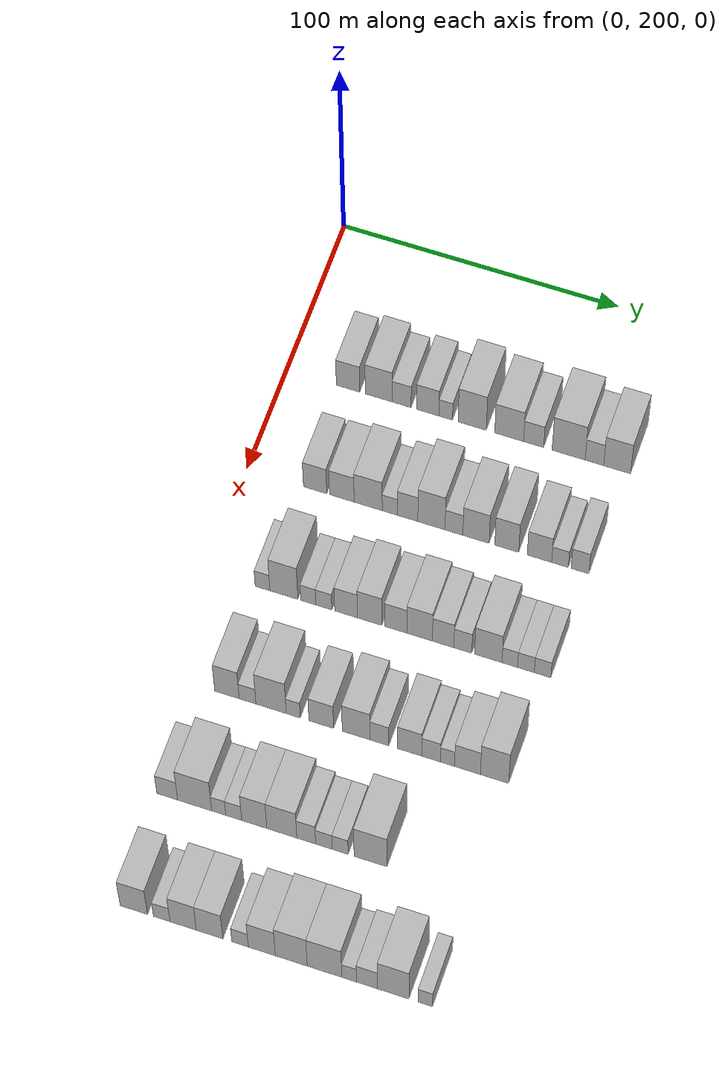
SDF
<sdf version="1.6">
 <world name="default">
  <model name="building_95">
   <static>1</static>
   <pose>50.0000 222.2720 0 0.000000 0.000000 0.000000</pose>
   <link name="link">
    <pose>0 0 9.00 0 0 0</pose>
    <collision name="collision"><geometry><box><size>20.0000 8.4566 18.0000</size></box></geometry></collision>
    <visual name="visual">
     <cast_shadows>0</cast_shadows>
     <geometry><box><size>20.0000 8.4566 18.0000</size></box></geometry>
     <material>
      <script>
       <uri>model://HANNAS_wall/materials/scripts</uri>
       <uri>model://HANNAS_wall/materials/textures</uri>
       <name>vrc/HANNAS_wall</name>
      </script>
     </material>
    </visual>
   </link>
  </model>
  <model name="building_96">
   <static>1</static>
   <pose>50.0000 233.3106 0 0.000000 0.000000 0.000000</pose>
   <link name="link">
    <pose>0 0 10.50 0 0 0</pose>
    <collision name="collision"><geometry><box><size>20.0000 9.6207 21.0000</size></box></geometry></collision>
    <visual name="visual">
     <cast_shadows>0</cast_shadows>
     <geometry><box><size>20.0000 9.6207 21.0000</size></box></geometry>
     <material>
      <script>
       <uri>model://HANNAS_wall/materials/scripts</uri>
       <uri>model://HANNAS_wall/materials/textures</uri>
       <name>vrc/HANNAS_wall</name>
      </script>
     </material>
    </visual>
   </link>
  </model>
  <model name="building_97">
   <static>1</static>
   <pose>50.0000 241.5277 0 0.000000 0.000000 0.000000</pose>
   <link name="link">
    <pose>0 0 7.50 0 0 0</pose>
    <collision name="collision"><geometry><box><size>20.0000 6.8134 15.0000</size></box></geometry></collision>
    <visual name="visual">
     <cast_shadows>0</cast_shadows>
     <geometry><box><size>20.0000 6.8134 15.0000</size></box></geometry>
     <material>
      <script>
       <uri>model://HANNAS_wall/materials/scripts</uri>
       <uri>model://HANNAS_wall/materials/textures</uri>
       <name>vrc/HANNAS_wall</name>
      </script>
     </material>
    </visual>
   </link>
  </model>
  <model name="building_98">
   <static>1</static>
   <pose>50.0000 250.9354 0 0.000000 0.000000 0.000000</pose>
   <link name="link">
    <pose>0 0 9.00 0 0 0</pose>
    <collision name="collision"><geometry><box><size>20.0000 8.0019 18.0000</size></box></geometry></collision>
    <visual name="visual">
     <cast_shadows>0</cast_shadows>
     <geometry><box><size>20.0000 8.0019 18.0000</size></box></geometry>
     <material>
      <script>
       <uri>model://HANNAS_wall/materials/scripts</uri>
       <uri>model://HANNAS_wall/materials/textures</uri>
       <name>vrc/HANNAS_wall</name>
      </script>
     </material>
    </visual>
   </link>
  </model>
  <model name="building_99">
   <static>1</static>
   <pose>50.0000 257.3571 0 0.000000 0.000000 0.000000</pose>
   <link name="link">
    <pose>0 0 6.00 0 0 0</pose>
    <collision name="collision"><geometry><box><size>20.0000 4.8415 12.0000</size></box></geometry></collision>
    <visual name="visual">
     <cast_shadows>0</cast_shadows>
     <geometry><box><size>20.0000 4.8415 12.0000</size></box></geometry>
     <material>
      <script>
       <uri>model://HANNAS_wall/materials/scripts</uri>
       <uri>model://HANNAS_wall/materials/textures</uri>
       <name>vrc/HANNAS_wall</name>
      </script>
     </material>
    </visual>
   </link>
  </model>
  <model name="building_100">
   <static>1</static>
   <pose>50.0000 266.8062 0 0.000000 0.000000 0.000000</pose>
   <link name="link">
    <pose>0 0 12.00 0 0 0</pose>
    <collision name="collision"><geometry><box><size>20.0000 10.0568 24.0000</size></box></geometry></collision>
    <visual name="visual">
     <cast_shadows>0</cast_shadows>
     <geometry><box><size>20.0000 10.0568 24.0000</size></box></geometry>
     <material>
      <script>
       <uri>model://HANNAS_wall/materials/scripts</uri>
       <uri>model://HANNAS_wall/materials/textures</uri>
       <name>vrc/HANNAS_wall</name>
      </script>
     </material>
    </visual>
   </link>
  </model>
  <model name="building_101">
   <static>1</static>
   <pose>50.0000 279.9555 0 0.000000 0.000000 0.000000</pose>
   <link name="link">
    <pose>0 0 10.50 0 0 0</pose>
    <collision name="collision"><geometry><box><size>20.0000 10.2418 21.0000</size></box></geometry></collision>
    <visual name="visual">
     <cast_shadows>0</cast_shadows>
     <geometry><box><size>20.0000 10.2418 21.0000</size></box></geometry>
     <material>
      <script>
       <uri>model://HANNAS_wall/materials/scripts</uri>
       <uri>model://HANNAS_wall/materials/textures</uri>
       <name>vrc/HANNAS_wall</name>
      </script>
     </material>
    </visual>
   </link>
  </model>
  <model name="building_102">
   <static>1</static>
   <pose>50.0000 288.6514 0 0.000000 0.000000 0.000000</pose>
   <link name="link">
    <pose>0 0 7.50 0 0 0</pose>
    <collision name="collision"><geometry><box><size>20.0000 7.1499 15.0000</size></box></geometry></collision>
    <visual name="visual">
     <cast_shadows>0</cast_shadows>
     <geometry><box><size>20.0000 7.1499 15.0000</size></box></geometry>
     <material>
      <script>
       <uri>model://HANNAS_wall/materials/scripts</uri>
       <uri>model://HANNAS_wall/materials/textures</uri>
       <name>vrc/HANNAS_wall</name>
      </script>
     </material>
    </visual>
   </link>
  </model>
  <model name="building_103">
   <static>1</static>
   <pose>50.0000 301.0741 0 0.000000 0.000000 0.000000</pose>
   <link name="link">
    <pose>0 0 12.00 0 0 0</pose>
    <collision name="collision"><geometry><box><size>20.0000 11.6955 24.0000</size></box></geometry></collision>
    <visual name="visual">
     <cast_shadows>0</cast_shadows>
     <geometry><box><size>20.0000 11.6955 24.0000</size></box></geometry>
     <material>
      <script>
       <uri>model://HANNAS_wall/materials/scripts</uri>
       <uri>model://HANNAS_wall/materials/textures</uri>
       <name>vrc/HANNAS_wall</name>
      </script>
     </material>
    </visual>
   </link>
  </model>
  <model name="building_104">
   <static>1</static>
   <pose>50.0000 310.1963 0 0.000000 0.000000 0.000000</pose>
   <link name="link">
    <pose>0 0 7.50 0 0 0</pose>
    <collision name="collision"><geometry><box><size>20.0000 6.5489 15.0000</size></box></geometry></collision>
    <visual name="visual">
     <cast_shadows>0</cast_shadows>
     <geometry><box><size>20.0000 6.5489 15.0000</size></box></geometry>
     <material>
      <script>
       <uri>model://HANNAS_wall/materials/scripts</uri>
       <uri>model://HANNAS_wall/materials/textures</uri>
       <name>vrc/HANNAS_wall</name>
      </script>
     </material>
    </visual>
   </link>
  </model>
  <model name="building_105">
   <static>1</static>
   <pose>50.0000 318.2309 0 0.000000 0.000000 0.000000</pose>
   <link name="link">
    <pose>0 0 10.50 0 0 0</pose>
    <collision name="collision"><geometry><box><size>20.0000 9.5203 21.0000</size></box></geometry></collision>
    <visual name="visual">
     <cast_shadows>0</cast_shadows>
     <geometry><box><size>20.0000 9.5203 21.0000</size></box></geometry>
     <material>
      <script>
       <uri>model://HANNAS_wall/materials/scripts</uri>
       <uri>model://HANNAS_wall/materials/textures</uri>
       <name>vrc/HANNAS_wall</name>
      </script>
     </material>
    </visual>
   </link>
  </model>
  <model name="building_232">
   <static>1</static>
   <pose>90.0000 224.4214 0 0.000000 0.000000 0.000000</pose>
   <link name="link">
    <pose>0 0 9.00 0 0 0</pose>
    <collision name="collision"><geometry><box><size>20.0000 8.2907 18.0000</size></box></geometry></collision>
    <visual name="visual">
     <cast_shadows>0</cast_shadows>
     <geometry><box><size>20.0000 8.2907 18.0000</size></box></geometry>
     <material>
      <script>
       <uri>model://HANNAS_wall/materials/scripts</uri>
       <uri>model://HANNAS_wall/materials/textures</uri>
       <name>vrc/HANNAS_wall</name>
      </script>
     </material>
    </visual>
   </link>
  </model>
  <model name="building_233">
   <static>1</static>
   <pose>90.0000 233.9444 0 0.000000 0.000000 0.000000</pose>
   <link name="link">
    <pose>0 0 9.00 0 0 0</pose>
    <collision name="collision"><geometry><box><size>20.0000 8.7552 18.0000</size></box></geometry></collision>
    <visual name="visual">
     <cast_shadows>0</cast_shadows>
     <geometry><box><size>20.0000 8.7552 18.0000</size></box></geometry>
     <material>
      <script>
       <uri>model://HANNAS_wall/materials/scripts</uri>
       <uri>model://HANNAS_wall/materials/textures</uri>
       <name>vrc/HANNAS_wall</name>
      </script>
     </material>
    </visual>
   </link>
  </model>
  <model name="building_234">
   <static>1</static>
   <pose>90.0000 243.2996 0 0.000000 0.000000 0.000000</pose>
   <link name="link">
    <pose>0 0 10.50 0 0 0</pose>
    <collision name="collision"><geometry><box><size>20.0000 9.9551 21.0000</size></box></geometry></collision>
    <visual name="visual">
     <cast_shadows>0</cast_shadows>
     <geometry><box><size>20.0000 9.9551 21.0000</size></box></geometry>
     <material>
      <script>
       <uri>model://HANNAS_wall/materials/scripts</uri>
       <uri>model://HANNAS_wall/materials/textures</uri>
       <name>vrc/HANNAS_wall</name>
      </script>
     </material>
    </visual>
   </link>
  </model>
  <model name="building_235">
   <static>1</static>
   <pose>90.0000 250.9533 0 0.000000 0.000000 0.000000</pose>
   <link name="link">
    <pose>0 0 6.00 0 0 0</pose>
    <collision name="collision"><geometry><box><size>20.0000 5.3523 12.0000</size></box></geometry></collision>
    <visual name="visual">
     <cast_shadows>0</cast_shadows>
     <geometry><box><size>20.0000 5.3523 12.0000</size></box></geometry>
     <material>
      <script>
       <uri>model://HANNAS_wall/materials/scripts</uri>
       <uri>model://HANNAS_wall/materials/textures</uri>
       <name>vrc/HANNAS_wall</name>
      </script>
     </material>
    </visual>
   </link>
  </model>
  <model name="building_236">
   <static>1</static>
   <pose>90.0000 257.2441 0 0.000000 0.000000 0.000000</pose>
   <link name="link">
    <pose>0 0 9.00 0 0 0</pose>
    <collision name="collision"><geometry><box><size>20.0000 7.2294 18.0000</size></box></geometry></collision>
    <visual name="visual">
     <cast_shadows>0</cast_shadows>
     <geometry><box><size>20.0000 7.2294 18.0000</size></box></geometry>
     <material>
      <script>
       <uri>model://HANNAS_wall/materials/scripts</uri>
       <uri>model://HANNAS_wall/materials/textures</uri>
       <name>vrc/HANNAS_wall</name>
      </script>
     </material>
    </visual>
   </link>
  </model>
  <model name="building_237">
   <static>1</static>
   <pose>90.0000 265.6787 0 0.000000 0.000000 0.000000</pose>
   <link name="link">
    <pose>0 0 12.00 0 0 0</pose>
    <collision name="collision"><geometry><box><size>20.0000 9.6397 24.0000</size></box></geometry></collision>
    <visual name="visual">
     <cast_shadows>0</cast_shadows>
     <geometry><box><size>20.0000 9.6397 24.0000</size></box></geometry>
     <material>
      <script>
       <uri>model://HANNAS_wall/materials/scripts</uri>
       <uri>model://HANNAS_wall/materials/textures</uri>
       <name>vrc/HANNAS_wall</name>
      </script>
     </material>
    </visual>
   </link>
  </model>
  <model name="building_238">
   <static>1</static>
   <pose>90.0000 273.6369 0 0.000000 0.000000 0.000000</pose>
   <link name="link">
    <pose>0 0 7.50 0 0 0</pose>
    <collision name="collision"><geometry><box><size>20.0000 6.2767 15.0000</size></box></geometry></collision>
    <visual name="visual">
     <cast_shadows>0</cast_shadows>
     <geometry><box><size>20.0000 6.2767 15.0000</size></box></geometry>
     <material>
      <script>
       <uri>model://HANNAS_wall/materials/scripts</uri>
       <uri>model://HANNAS_wall/materials/textures</uri>
       <name>vrc/HANNAS_wall</name>
      </script>
     </material>
    </visual>
   </link>
  </model>
  <model name="building_239">
   <static>1</static>
   <pose>90.0000 281.3880 0 0.000000 0.000000 0.000000</pose>
   <link name="link">
    <pose>0 0 10.50 0 0 0</pose>
    <collision name="collision"><geometry><box><size>20.0000 9.2254 21.0000</size></box></geometry></collision>
    <visual name="visual">
     <cast_shadows>0</cast_shadows>
     <geometry><box><size>20.0000 9.2254 21.0000</size></box></geometry>
     <material>
      <script>
       <uri>model://HANNAS_wall/materials/scripts</uri>
       <uri>model://HANNAS_wall/materials/textures</uri>
       <name>vrc/HANNAS_wall</name>
      </script>
     </material>
    </visual>
   </link>
  </model>
  <model name="building_240">
   <static>1</static>
   <pose>90.0000 292.2051 0 0.000000 0.000000 0.000000</pose>
   <link name="link">
    <pose>0 0 10.50 0 0 0</pose>
    <collision name="collision"><geometry><box><size>20.0000 8.4088 21.0000</size></box></geometry></collision>
    <visual name="visual">
     <cast_shadows>0</cast_shadows>
     <geometry><box><size>20.0000 8.4088 21.0000</size></box></geometry>
     <material>
      <script>
       <uri>model://HANNAS_wall/materials/scripts</uri>
       <uri>model://HANNAS_wall/materials/textures</uri>
       <name>vrc/HANNAS_wall</name>
      </script>
     </material>
    </visual>
   </link>
  </model>
  <model name="building_241">
   <static>1</static>
   <pose>90.0000 303.6749 0 0.000000 0.000000 0.000000</pose>
   <link name="link">
    <pose>0 0 9.00 0 0 0</pose>
    <collision name="collision"><geometry><box><size>20.0000 8.5307 18.0000</size></box></geometry></collision>
    <visual name="visual">
     <cast_shadows>0</cast_shadows>
     <geometry><box><size>20.0000 8.5307 18.0000</size></box></geometry>
     <material>
      <script>
       <uri>model://HANNAS_wall/materials/scripts</uri>
       <uri>model://HANNAS_wall/materials/textures</uri>
       <name>vrc/HANNAS_wall</name>
      </script>
     </material>
    </visual>
   </link>
  </model>
  <model name="building_242">
   <static>1</static>
   <pose>90.0000 310.8512 0 0.000000 0.000000 0.000000</pose>
   <link name="link">
    <pose>0 0 6.00 0 0 0</pose>
    <collision name="collision"><geometry><box><size>20.0000 5.8221 12.0000</size></box></geometry></collision>
    <visual name="visual">
     <cast_shadows>0</cast_shadows>
     <geometry><box><size>20.0000 5.8221 12.0000</size></box></geometry>
     <material>
      <script>
       <uri>model://HANNAS_wall/materials/scripts</uri>
       <uri>model://HANNAS_wall/materials/textures</uri>
       <name>vrc/HANNAS_wall</name>
      </script>
     </material>
    </visual>
   </link>
  </model>
  <model name="building_243">
   <static>1</static>
   <pose>90.0000 317.8593 0 0.000000 0.000000 0.000000</pose>
   <link name="link">
    <pose>0 0 7.50 0 0 0</pose>
    <collision name="collision"><geometry><box><size>20.0000 6.1939 15.0000</size></box></geometry></collision>
    <visual name="visual">
     <cast_shadows>0</cast_shadows>
     <geometry><box><size>20.0000 6.1939 15.0000</size></box></geometry>
     <material>
      <script>
       <uri>model://HANNAS_wall/materials/scripts</uri>
       <uri>model://HANNAS_wall/materials/textures</uri>
       <name>vrc/HANNAS_wall</name>
      </script>
     </material>
    </visual>
   </link>
  </model>
  <model name="building_375">
   <static>1</static>
   <pose>130.0000 219.9479 0 0.000000 0.000000 0.000000</pose>
   <link name="link">
    <pose>0 0 6.00 0 0 0</pose>
    <collision name="collision"><geometry><box><size>20.0000 5.1856 12.0000</size></box></geometry></collision>
    <visual name="visual">
     <cast_shadows>0</cast_shadows>
     <geometry><box><size>20.0000 5.1856 12.0000</size></box></geometry>
     <material>
      <script>
       <uri>model://HANNAS_wall/materials/scripts</uri>
       <uri>model://HANNAS_wall/materials/textures</uri>
       <name>vrc/HANNAS_wall</name>
      </script>
     </material>
    </visual>
   </link>
  </model>
  <model name="building_376">
   <static>1</static>
   <pose>130.0000 227.4805 0 0.000000 0.000000 0.000000</pose>
   <link name="link">
    <pose>0 0 12.00 0 0 0</pose>
    <collision name="collision"><geometry><box><size>20.0000 9.8796 24.0000</size></box></geometry></collision>
    <visual name="visual">
     <cast_shadows>0</cast_shadows>
     <geometry><box><size>20.0000 9.8796 24.0000</size></box></geometry>
     <material>
      <script>
       <uri>model://HANNAS_wall/materials/scripts</uri>
       <uri>model://HANNAS_wall/materials/textures</uri>
       <name>vrc/HANNAS_wall</name>
      </script>
     </material>
    </visual>
   </link>
  </model>
  <model name="building_377">
   <static>1</static>
   <pose>130.0000 236.0617 0 0.000000 0.000000 0.000000</pose>
   <link name="link">
    <pose>0 0 6.00 0 0 0</pose>
    <collision name="collision"><geometry><box><size>20.0000 5.2829 12.0000</size></box></geometry></collision>
    <visual name="visual">
     <cast_shadows>0</cast_shadows>
     <geometry><box><size>20.0000 5.2829 12.0000</size></box></geometry>
     <material>
      <script>
       <uri>model://HANNAS_wall/materials/scripts</uri>
       <uri>model://HANNAS_wall/materials/textures</uri>
       <name>vrc/HANNAS_wall</name>
      </script>
     </material>
    </visual>
   </link>
  </model>
  <model name="building_378">
   <static>1</static>
   <pose>130.0000 241.5209 0 0.000000 0.000000 0.000000</pose>
   <link name="link">
    <pose>0 0 6.00 0 0 0</pose>
    <collision name="collision"><geometry><box><size>20.0000 5.6355 12.0000</size></box></geometry></collision>
    <visual name="visual">
     <cast_shadows>0</cast_shadows>
     <geometry><box><size>20.0000 5.6355 12.0000</size></box></geometry>
     <material>
      <script>
       <uri>model://HANNAS_wall/materials/scripts</uri>
       <uri>model://HANNAS_wall/materials/textures</uri>
       <name>vrc/HANNAS_wall</name>
      </script>
     </material>
    </visual>
   </link>
  </model>
  <model name="building_379">
   <static>1</static>
   <pose>130.0000 249.3337 0 0.000000 0.000000 0.000000</pose>
   <link name="link">
    <pose>0 0 9.00 0 0 0</pose>
    <collision name="collision"><geometry><box><size>20.0000 7.9901 18.0000</size></box></geometry></collision>
    <visual name="visual">
     <cast_shadows>0</cast_shadows>
     <geometry><box><size>20.0000 7.9901 18.0000</size></box></geometry>
     <material>
      <script>
       <uri>model://HANNAS_wall/materials/scripts</uri>
       <uri>model://HANNAS_wall/materials/textures</uri>
       <name>vrc/HANNAS_wall</name>
      </script>
     </material>
    </visual>
   </link>
  </model>
  <model name="building_380">
   <static>1</static>
   <pose>130.0000 257.5986 0 0.000000 0.000000 0.000000</pose>
   <link name="link">
    <pose>0 0 10.50 0 0 0</pose>
    <collision name="collision"><geometry><box><size>20.0000 8.5398 21.0000</size></box></geometry></collision>
    <visual name="visual">
     <cast_shadows>0</cast_shadows>
     <geometry><box><size>20.0000 8.5398 21.0000</size></box></geometry>
     <material>
      <script>
       <uri>model://HANNAS_wall/materials/scripts</uri>
       <uri>model://HANNAS_wall/materials/textures</uri>
       <name>vrc/HANNAS_wall</name>
      </script>
     </material>
    </visual>
   </link>
  </model>
  <model name="building_381">
   <static>1</static>
   <pose>130.0000 266.7073 0 0.000000 0.000000 0.000000</pose>
   <link name="link">
    <pose>0 0 9.00 0 0 0</pose>
    <collision name="collision"><geometry><box><size>20.0000 7.6778 18.0000</size></box></geometry></collision>
    <visual name="visual">
     <cast_shadows>0</cast_shadows>
     <geometry><box><size>20.0000 7.6778 18.0000</size></box></geometry>
     <material>
      <script>
       <uri>model://HANNAS_wall/materials/scripts</uri>
       <uri>model://HANNAS_wall/materials/textures</uri>
       <name>vrc/HANNAS_wall</name>
      </script>
     </material>
    </visual>
   </link>
  </model>
  <model name="building_382">
   <static>1</static>
   <pose>130.0000 275.0326 0 0.000000 0.000000 0.000000</pose>
   <link name="link">
    <pose>0 0 10.50 0 0 0</pose>
    <collision name="collision"><geometry><box><size>20.0000 8.9727 21.0000</size></box></geometry></collision>
    <visual name="visual">
     <cast_shadows>0</cast_shadows>
     <geometry><box><size>20.0000 8.9727 21.0000</size></box></geometry>
     <material>
      <script>
       <uri>model://HANNAS_wall/materials/scripts</uri>
       <uri>model://HANNAS_wall/materials/textures</uri>
       <name>vrc/HANNAS_wall</name>
      </script>
     </material>
    </visual>
   </link>
  </model>
  <model name="building_383">
   <static>1</static>
   <pose>130.0000 283.2455 0 0.000000 0.000000 0.000000</pose>
   <link name="link">
    <pose>0 0 9.00 0 0 0</pose>
    <collision name="collision"><geometry><box><size>20.0000 7.4532 18.0000</size></box></geometry></collision>
    <visual name="visual">
     <cast_shadows>0</cast_shadows>
     <geometry><box><size>20.0000 7.4532 18.0000</size></box></geometry>
     <material>
      <script>
       <uri>model://HANNAS_wall/materials/scripts</uri>
       <uri>model://HANNAS_wall/materials/textures</uri>
       <name>vrc/HANNAS_wall</name>
      </script>
     </material>
    </visual>
   </link>
  </model>
  <model name="building_384">
   <static>1</static>
   <pose>130.0000 290.0762 0 0.000000 0.000000 0.000000</pose>
   <link name="link">
    <pose>0 0 7.50 0 0 0</pose>
    <collision name="collision"><geometry><box><size>20.0000 6.2083 15.0000</size></box></geometry></collision>
    <visual name="visual">
     <cast_shadows>0</cast_shadows>
     <geometry><box><size>20.0000 6.2083 15.0000</size></box></geometry>
     <material>
      <script>
       <uri>model://HANNAS_wall/materials/scripts</uri>
       <uri>model://HANNAS_wall/materials/textures</uri>
       <name>vrc/HANNAS_wall</name>
      </script>
     </material>
    </visual>
   </link>
  </model>
  <model name="building_385">
   <static>1</static>
   <pose>130.0000 298.9222 0 0.000000 0.000000 0.000000</pose>
   <link name="link">
    <pose>0 0 10.50 0 0 0</pose>
    <collision name="collision"><geometry><box><size>20.0000 9.4837 21.0000</size></box></geometry></collision>
    <visual name="visual">
     <cast_shadows>0</cast_shadows>
     <geometry><box><size>20.0000 9.4837 21.0000</size></box></geometry>
     <material>
      <script>
       <uri>model://HANNAS_wall/materials/scripts</uri>
       <uri>model://HANNAS_wall/materials/textures</uri>
       <name>vrc/HANNAS_wall</name>
      </script>
     </material>
    </visual>
   </link>
  </model>
  <model name="building_386">
   <static>1</static>
   <pose>130.0000 306.3521 0 0.000000 0.000000 0.000000</pose>
   <link name="link">
    <pose>0 0 6.00 0 0 0</pose>
    <collision name="collision"><geometry><box><size>20.0000 5.3761 12.0000</size></box></geometry></collision>
    <visual name="visual">
     <cast_shadows>0</cast_shadows>
     <geometry><box><size>20.0000 5.3761 12.0000</size></box></geometry>
     <material>
      <script>
       <uri>model://HANNAS_wall/materials/scripts</uri>
       <uri>model://HANNAS_wall/materials/textures</uri>
       <name>vrc/HANNAS_wall</name>
      </script>
     </material>
    </visual>
   </link>
  </model>
  <model name="building_387">
   <static>1</static>
   <pose>130.0000 311.9387 0 0.000000 0.000000 0.000000</pose>
   <link name="link">
    <pose>0 0 6.00 0 0 0</pose>
    <collision name="collision"><geometry><box><size>20.0000 5.7971 12.0000</size></box></geometry></collision>
    <visual name="visual">
     <cast_shadows>0</cast_shadows>
     <geometry><box><size>20.0000 5.7971 12.0000</size></box></geometry>
     <material>
      <script>
       <uri>model://HANNAS_wall/materials/scripts</uri>
       <uri>model://HANNAS_wall/materials/textures</uri>
       <name>vrc/HANNAS_wall</name>
      </script>
     </material>
    </visual>
   </link>
  </model>
  <model name="building_388">
   <static>1</static>
   <pose>130.0000 317.6998 0 0.000000 0.000000 0.000000</pose>
   <link name="link">
    <pose>0 0 6.00 0 0 0</pose>
    <collision name="collision"><geometry><box><size>20.0000 5.7251 12.0000</size></box></geometry></collision>
    <visual name="visual">
     <cast_shadows>0</cast_shadows>
     <geometry><box><size>20.0000 5.7251 12.0000</size></box></geometry>
     <material>
      <script>
       <uri>model://HANNAS_wall/materials/scripts</uri>
       <uri>model://HANNAS_wall/materials/textures</uri>
       <name>vrc/HANNAS_wall</name>
      </script>
     </material>
    </visual>
   </link>
  </model>
  <model name="building_521">
   <static>1</static>
   <pose>170.0000 221.8684 0 0.000000 0.000000 0.000000</pose>
   <link name="link">
    <pose>0 0 10.50 0 0 0</pose>
    <collision name="collision"><geometry><box><size>20.0000 8.4950 21.0000</size></box></geometry></collision>
    <visual name="visual">
     <cast_shadows>0</cast_shadows>
     <geometry><box><size>20.0000 8.4950 21.0000</size></box></geometry>
     <material>
      <script>
       <uri>model://HANNAS_wall/materials/scripts</uri>
       <uri>model://HANNAS_wall/materials/textures</uri>
       <name>vrc/HANNAS_wall</name>
      </script>
     </material>
    </visual>
   </link>
  </model>
  <model name="building_522">
   <static>1</static>
   <pose>170.0000 229.0380 0 0.000000 0.000000 0.000000</pose>
   <link name="link">
    <pose>0 0 6.00 0 0 0</pose>
    <collision name="collision"><geometry><box><size>20.0000 5.8442 12.0000</size></box></geometry></collision>
    <visual name="visual">
     <cast_shadows>0</cast_shadows>
     <geometry><box><size>20.0000 5.8442 12.0000</size></box></geometry>
     <material>
      <script>
       <uri>model://HANNAS_wall/materials/scripts</uri>
       <uri>model://HANNAS_wall/materials/textures</uri>
       <name>vrc/HANNAS_wall</name>
      </script>
     </material>
    </visual>
   </link>
  </model>
  <model name="building_523">
   <static>1</static>
   <pose>170.0000 237.2215 0 0.000000 0.000000 0.000000</pose>
   <link name="link">
    <pose>0 0 12.00 0 0 0</pose>
    <collision name="collision"><geometry><box><size>20.0000 10.5228 24.0000</size></box></geometry></collision>
    <visual name="visual">
     <cast_shadows>0</cast_shadows>
     <geometry><box><size>20.0000 10.5228 24.0000</size></box></geometry>
     <material>
      <script>
       <uri>model://HANNAS_wall/materials/scripts</uri>
       <uri>model://HANNAS_wall/materials/textures</uri>
       <name>vrc/HANNAS_wall</name>
      </script>
     </material>
    </visual>
   </link>
  </model>
  <model name="building_524">
   <static>1</static>
   <pose>170.0000 244.9265 0 0.000000 0.000000 0.000000</pose>
   <link name="link">
    <pose>0 0 6.00 0 0 0</pose>
    <collision name="collision"><geometry><box><size>20.0000 4.8872 12.0000</size></box></geometry></collision>
    <visual name="visual">
     <cast_shadows>0</cast_shadows>
     <geometry><box><size>20.0000 4.8872 12.0000</size></box></geometry>
     <material>
      <script>
       <uri>model://HANNAS_wall/materials/scripts</uri>
       <uri>model://HANNAS_wall/materials/textures</uri>
       <name>vrc/HANNAS_wall</name>
      </script>
     </material>
    </visual>
   </link>
  </model>
  <model name="building_525">
   <static>1</static>
   <pose>170.0000 254.6417 0 0.000000 0.000000 0.000000</pose>
   <link name="link">
    <pose>0 0 9.00 0 0 0</pose>
    <collision name="collision"><geometry><box><size>20.0000 8.5431 18.0000</size></box></geometry></collision>
    <visual name="visual">
     <cast_shadows>0</cast_shadows>
     <geometry><box><size>20.0000 8.5431 18.0000</size></box></geometry>
     <material>
      <script>
       <uri>model://HANNAS_wall/materials/scripts</uri>
       <uri>model://HANNAS_wall/materials/textures</uri>
       <name>vrc/HANNAS_wall</name>
      </script>
     </material>
    </visual>
   </link>
  </model>
  <model name="building_526">
   <static>1</static>
   <pose>170.0000 266.7006 0 0.000000 0.000000 0.000000</pose>
   <link name="link">
    <pose>0 0 10.50 0 0 0</pose>
    <collision name="collision"><geometry><box><size>20.0000 9.5747 21.0000</size></box></geometry></collision>
    <visual name="visual">
     <cast_shadows>0</cast_shadows>
     <geometry><box><size>20.0000 9.5747 21.0000</size></box></geometry>
     <material>
      <script>
       <uri>model://HANNAS_wall/materials/scripts</uri>
       <uri>model://HANNAS_wall/materials/textures</uri>
       <name>vrc/HANNAS_wall</name>
      </script>
     </material>
    </visual>
   </link>
  </model>
  <model name="building_527">
   <static>1</static>
   <pose>170.0000 274.7317 0 0.000000 0.000000 0.000000</pose>
   <link name="link">
    <pose>0 0 7.50 0 0 0</pose>
    <collision name="collision"><geometry><box><size>20.0000 6.4876 15.0000</size></box></geometry></collision>
    <visual name="visual">
     <cast_shadows>0</cast_shadows>
     <geometry><box><size>20.0000 6.4876 15.0000</size></box></geometry>
     <material>
      <script>
       <uri>model://HANNAS_wall/materials/scripts</uri>
       <uri>model://HANNAS_wall/materials/textures</uri>
       <name>vrc/HANNAS_wall</name>
      </script>
     </material>
    </visual>
   </link>
  </model>
  <model name="building_528">
   <static>1</static>
   <pose>170.0000 285.1215 0 0.000000 0.000000 0.000000</pose>
   <link name="link">
    <pose>0 0 9.00 0 0 0</pose>
    <collision name="collision"><geometry><box><size>20.0000 8.2919 18.0000</size></box></geometry></collision>
    <visual name="visual">
     <cast_shadows>0</cast_shadows>
     <geometry><box><size>20.0000 8.2919 18.0000</size></box></geometry>
     <material>
      <script>
       <uri>model://HANNAS_wall/materials/scripts</uri>
       <uri>model://HANNAS_wall/materials/textures</uri>
       <name>vrc/HANNAS_wall</name>
      </script>
     </material>
    </visual>
   </link>
  </model>
  <model name="building_529">
   <static>1</static>
   <pose>170.0000 292.4679 0 0.000000 0.000000 0.000000</pose>
   <link name="link">
    <pose>0 0 7.50 0 0 0</pose>
    <collision name="collision"><geometry><box><size>20.0000 6.4010 15.0000</size></box></geometry></collision>
    <visual name="visual">
     <cast_shadows>0</cast_shadows>
     <geometry><box><size>20.0000 6.4010 15.0000</size></box></geometry>
     <material>
      <script>
       <uri>model://HANNAS_wall/materials/scripts</uri>
       <uri>model://HANNAS_wall/materials/textures</uri>
       <name>vrc/HANNAS_wall</name>
      </script>
     </material>
    </visual>
   </link>
  </model>
  <model name="building_530">
   <static>1</static>
   <pose>170.0000 298.1200 0 0.000000 0.000000 0.000000</pose>
   <link name="link">
    <pose>0 0 6.00 0 0 0</pose>
    <collision name="collision"><geometry><box><size>20.0000 4.9031 12.0000</size></box></geometry></collision>
    <visual name="visual">
     <cast_shadows>0</cast_shadows>
     <geometry><box><size>20.0000 4.9031 12.0000</size></box></geometry>
     <material>
      <script>
       <uri>model://HANNAS_wall/materials/scripts</uri>
       <uri>model://HANNAS_wall/materials/textures</uri>
       <name>vrc/HANNAS_wall</name>
      </script>
     </material>
    </visual>
   </link>
  </model>
  <model name="building_531">
   <static>1</static>
   <pose>170.0000 304.9834 0 0.000000 0.000000 0.000000</pose>
   <link name="link">
    <pose>0 0 9.00 0 0 0</pose>
    <collision name="collision"><geometry><box><size>20.0000 8.8236 18.0000</size></box></geometry></collision>
    <visual name="visual">
     <cast_shadows>0</cast_shadows>
     <geometry><box><size>20.0000 8.8236 18.0000</size></box></geometry>
     <material>
      <script>
       <uri>model://HANNAS_wall/materials/scripts</uri>
       <uri>model://HANNAS_wall/materials/textures</uri>
       <name>vrc/HANNAS_wall</name>
      </script>
     </material>
    </visual>
   </link>
  </model>
  <model name="building_532">
   <static>1</static>
   <pose>170.0000 314.2406 0 0.000000 0.000000 0.000000</pose>
   <link name="link">
    <pose>0 0 12.00 0 0 0</pose>
    <collision name="collision"><geometry><box><size>20.0000 9.6908 24.0000</size></box></geometry></collision>
    <visual name="visual">
     <cast_shadows>0</cast_shadows>
     <geometry><box><size>20.0000 9.6908 24.0000</size></box></geometry>
     <material>
      <script>
       <uri>model://HANNAS_wall/materials/scripts</uri>
       <uri>model://HANNAS_wall/materials/textures</uri>
       <name>vrc/HANNAS_wall</name>
      </script>
     </material>
    </visual>
   </link>
  </model>
  <model name="building_669">
   <static>1</static>
   <pose>210.0000 215.7706 0 0.000000 0.000000 0.000000</pose>
   <link name="link">
    <pose>0 0 7.50 0 0 0</pose>
    <collision name="collision"><geometry><box><size>20.0000 7.1572 15.0000</size></box></geometry></collision>
    <visual name="visual">
     <cast_shadows>0</cast_shadows>
     <geometry><box><size>20.0000 7.1572 15.0000</size></box></geometry>
     <material>
      <script>
       <uri>model://HANNAS_wall/materials/scripts</uri>
       <uri>model://HANNAS_wall/materials/textures</uri>
       <name>vrc/HANNAS_wall</name>
      </script>
     </material>
    </visual>
   </link>
  </model>
  <model name="building_670">
   <static>1</static>
   <pose>210.0000 225.2338 0 0.000000 0.000000 0.000000</pose>
   <link name="link">
    <pose>0 0 12.00 0 0 0</pose>
    <collision name="collision"><geometry><box><size>20.0000 11.7692 24.0000</size></box></geometry></collision>
    <visual name="visual">
     <cast_shadows>0</cast_shadows>
     <geometry><box><size>20.0000 11.7692 24.0000</size></box></geometry>
     <material>
      <script>
       <uri>model://HANNAS_wall/materials/scripts</uri>
       <uri>model://HANNAS_wall/materials/textures</uri>
       <name>vrc/HANNAS_wall</name>
      </script>
     </material>
    </visual>
   </link>
  </model>
  <model name="building_671">
   <static>1</static>
   <pose>210.0000 233.5365 0 0.000000 0.000000 0.000000</pose>
   <link name="link">
    <pose>0 0 6.00 0 0 0</pose>
    <collision name="collision"><geometry><box><size>20.0000 4.8363 12.0000</size></box></geometry></collision>
    <visual name="visual">
     <cast_shadows>0</cast_shadows>
     <geometry><box><size>20.0000 4.8363 12.0000</size></box></geometry>
     <material>
      <script>
       <uri>model://HANNAS_wall/materials/scripts</uri>
       <uri>model://HANNAS_wall/materials/textures</uri>
       <name>vrc/HANNAS_wall</name>
      </script>
     </material>
    </visual>
   </link>
  </model>
  <model name="building_672">
   <static>1</static>
   <pose>210.0000 238.6859 0 0.000000 0.000000 0.000000</pose>
   <link name="link">
    <pose>0 0 6.00 0 0 0</pose>
    <collision name="collision"><geometry><box><size>20.0000 5.4626 12.0000</size></box></geometry></collision>
    <visual name="visual">
     <cast_shadows>0</cast_shadows>
     <geometry><box><size>20.0000 5.4626 12.0000</size></box></geometry>
     <material>
      <script>
       <uri>model://HANNAS_wall/materials/scripts</uri>
       <uri>model://HANNAS_wall/materials/textures</uri>
       <name>vrc/HANNAS_wall</name>
      </script>
     </material>
    </visual>
   </link>
  </model>
  <model name="building_673">
   <static>1</static>
   <pose>210.0000 245.7280 0 0.000000 0.000000 0.000000</pose>
   <link name="link">
    <pose>0 0 10.50 0 0 0</pose>
    <collision name="collision"><geometry><box><size>20.0000 8.6216 21.0000</size></box></geometry></collision>
    <visual name="visual">
     <cast_shadows>0</cast_shadows>
     <geometry><box><size>20.0000 8.6216 21.0000</size></box></geometry>
     <material>
      <script>
       <uri>model://HANNAS_wall/materials/scripts</uri>
       <uri>model://HANNAS_wall/materials/textures</uri>
       <name>vrc/HANNAS_wall</name>
      </script>
     </material>
    </visual>
   </link>
  </model>
  <model name="building_674">
   <static>1</static>
   <pose>210.0000 255.1708 0 0.000000 0.000000 0.000000</pose>
   <link name="link">
    <pose>0 0 10.50 0 0 0</pose>
    <collision name="collision"><geometry><box><size>20.0000 10.2639 21.0000</size></box></geometry></collision>
    <visual name="visual">
     <cast_shadows>0</cast_shadows>
     <geometry><box><size>20.0000 10.2639 21.0000</size></box></geometry>
     <material>
      <script>
       <uri>model://HANNAS_wall/materials/scripts</uri>
       <uri>model://HANNAS_wall/materials/textures</uri>
       <name>vrc/HANNAS_wall</name>
      </script>
     </material>
    </visual>
   </link>
  </model>
  <model name="building_675">
   <static>1</static>
   <pose>210.0000 263.5161 0 0.000000 0.000000 0.000000</pose>
   <link name="link">
    <pose>0 0 7.50 0 0 0</pose>
    <collision name="collision"><geometry><box><size>20.0000 6.4268 15.0000</size></box></geometry></collision>
    <visual name="visual">
     <cast_shadows>0</cast_shadows>
     <geometry><box><size>20.0000 6.4268 15.0000</size></box></geometry>
     <material>
      <script>
       <uri>model://HANNAS_wall/materials/scripts</uri>
       <uri>model://HANNAS_wall/materials/textures</uri>
       <name>vrc/HANNAS_wall</name>
      </script>
     </material>
    </visual>
   </link>
  </model>
  <model name="building_676">
   <static>1</static>
   <pose>210.0000 269.5638 0 0.000000 0.000000 0.000000</pose>
   <link name="link">
    <pose>0 0 6.00 0 0 0</pose>
    <collision name="collision"><geometry><box><size>20.0000 5.6685 12.0000</size></box></geometry></collision>
    <visual name="visual">
     <cast_shadows>0</cast_shadows>
     <geometry><box><size>20.0000 5.6685 12.0000</size></box></geometry>
     <material>
      <script>
       <uri>model://HANNAS_wall/materials/scripts</uri>
       <uri>model://HANNAS_wall/materials/textures</uri>
       <name>vrc/HANNAS_wall</name>
      </script>
     </material>
    </visual>
   </link>
  </model>
  <model name="building_677">
   <static>1</static>
   <pose>210.0000 275.1192 0 0.000000 0.000000 0.000000</pose>
   <link name="link">
    <pose>0 0 6.00 0 0 0</pose>
    <collision name="collision"><geometry><box><size>20.0000 5.4423 12.0000</size></box></geometry></collision>
    <visual name="visual">
     <cast_shadows>0</cast_shadows>
     <geometry><box><size>20.0000 5.4423 12.0000</size></box></geometry>
     <material>
      <script>
       <uri>model://HANNAS_wall/materials/scripts</uri>
       <uri>model://HANNAS_wall/materials/textures</uri>
       <name>vrc/HANNAS_wall</name>
      </script>
     </material>
    </visual>
   </link>
  </model>
  <model name="building_678">
   <static>1</static>
   <pose>210.0000 285.4406 0 0.000000 0.000000 0.000000</pose>
   <link name="link">
    <pose>0 0 12.00 0 0 0</pose>
    <collision name="collision"><geometry><box><size>20.0000 11.2005 24.0000</size></box></geometry></collision>
    <visual name="visual">
     <cast_shadows>0</cast_shadows>
     <geometry><box><size>20.0000 11.2005 24.0000</size></box></geometry>
     <material>
      <script>
       <uri>model://HANNAS_wall/materials/scripts</uri>
       <uri>model://HANNAS_wall/materials/textures</uri>
       <name>vrc/HANNAS_wall</name>
      </script>
     </material>
    </visual>
   </link>
  </model>
  <model name="building_804">
   <static>1</static>
   <pose>250.0000 219.2007 0 0.000000 0.000000 0.000000</pose>
   <link name="link">
    <pose>0 0 10.50 0 0 0</pose>
    <collision name="collision"><geometry><box><size>20.0000 9.3187 21.0000</size></box></geometry></collision>
    <visual name="visual">
     <cast_shadows>0</cast_shadows>
     <geometry><box><size>20.0000 9.3187 21.0000</size></box></geometry>
     <material>
      <script>
       <uri>model://HANNAS_wall/materials/scripts</uri>
       <uri>model://HANNAS_wall/materials/textures</uri>
       <name>vrc/HANNAS_wall</name>
      </script>
     </material>
    </visual>
   </link>
  </model>
  <model name="building_805">
   <static>1</static>
   <pose>250.0000 228.6753 0 0.000000 0.000000 0.000000</pose>
   <link name="link">
    <pose>0 0 6.00 0 0 0</pose>
    <collision name="collision"><geometry><box><size>20.0000 5.6305 12.0000</size></box></geometry></collision>
    <visual name="visual">
     <cast_shadows>0</cast_shadows>
     <geometry><box><size>20.0000 5.6305 12.0000</size></box></geometry>
     <material>
      <script>
       <uri>model://HANNAS_wall/materials/scripts</uri>
       <uri>model://HANNAS_wall/materials/textures</uri>
       <name>vrc/HANNAS_wall</name>
      </script>
     </material>
    </visual>
   </link>
  </model>
  <model name="building_806">
   <static>1</static>
   <pose>250.0000 235.9730 0 0.000000 0.000000 0.000000</pose>
   <link name="link">
    <pose>0 0 10.50 0 0 0</pose>
    <collision name="collision"><geometry><box><size>20.0000 8.9649 21.0000</size></box></geometry></collision>
    <visual name="visual">
     <cast_shadows>0</cast_shadows>
     <geometry><box><size>20.0000 8.9649 21.0000</size></box></geometry>
     <material>
      <script>
       <uri>model://HANNAS_wall/materials/scripts</uri>
       <uri>model://HANNAS_wall/materials/textures</uri>
       <name>vrc/HANNAS_wall</name>
      </script>
     </material>
    </visual>
   </link>
  </model>
  <model name="building_807">
   <static>1</static>
   <pose>250.0000 244.9645 0 0.000000 0.000000 0.000000</pose>
   <link name="link">
    <pose>0 0 10.50 0 0 0</pose>
    <collision name="collision"><geometry><box><size>20.0000 9.0181 21.0000</size></box></geometry></collision>
    <visual name="visual">
     <cast_shadows>0</cast_shadows>
     <geometry><box><size>20.0000 9.0181 21.0000</size></box></geometry>
     <material>
      <script>
       <uri>model://HANNAS_wall/materials/scripts</uri>
       <uri>model://HANNAS_wall/materials/textures</uri>
       <name>vrc/HANNAS_wall</name>
      </script>
     </material>
    </visual>
   </link>
  </model>
  <model name="building_808">
   <static>1</static>
   <pose>250.0000 255.2690 0 0.000000 0.000000 0.000000</pose>
   <link name="link">
    <pose>0 0 6.00 0 0 0</pose>
    <collision name="collision"><geometry><box><size>20.0000 5.5909 12.0000</size></box></geometry></collision>
    <visual name="visual">
     <cast_shadows>0</cast_shadows>
     <geometry><box><size>20.0000 5.5909 12.0000</size></box></geometry>
     <material>
      <script>
       <uri>model://HANNAS_wall/materials/scripts</uri>
       <uri>model://HANNAS_wall/materials/textures</uri>
       <name>vrc/HANNAS_wall</name>
      </script>
     </material>
    </visual>
   </link>
  </model>
  <model name="building_809">
   <static>1</static>
   <pose>250.0000 262.6310 0 0.000000 0.000000 0.000000</pose>
   <link name="link">
    <pose>0 0 10.50 0 0 0</pose>
    <collision name="collision"><geometry><box><size>20.0000 9.1331 21.0000</size></box></geometry></collision>
    <visual name="visual">
     <cast_shadows>0</cast_shadows>
     <geometry><box><size>20.0000 9.1331 21.0000</size></box></geometry>
     <material>
      <script>
       <uri>model://HANNAS_wall/materials/scripts</uri>
       <uri>model://HANNAS_wall/materials/textures</uri>
       <name>vrc/HANNAS_wall</name>
      </script>
     </material>
    </visual>
   </link>
  </model>
  <model name="building_810">
   <static>1</static>
   <pose>250.0000 272.5660 0 0.000000 0.000000 0.000000</pose>
   <link name="link">
    <pose>0 0 12.00 0 0 0</pose>
    <collision name="collision"><geometry><box><size>20.0000 10.7369 24.0000</size></box></geometry></collision>
    <visual name="visual">
     <cast_shadows>0</cast_shadows>
     <geometry><box><size>20.0000 10.7369 24.0000</size></box></geometry>
     <material>
      <script>
       <uri>model://HANNAS_wall/materials/scripts</uri>
       <uri>model://HANNAS_wall/materials/textures</uri>
       <name>vrc/HANNAS_wall</name>
      </script>
     </material>
    </visual>
   </link>
  </model>
  <model name="building_811">
   <static>1</static>
   <pose>250.0000 283.7536 0 0.000000 0.000000 0.000000</pose>
   <link name="link">
    <pose>0 0 12.00 0 0 0</pose>
    <collision name="collision"><geometry><box><size>20.0000 11.6383 24.0000</size></box></geometry></collision>
    <visual name="visual">
     <cast_shadows>0</cast_shadows>
     <geometry><box><size>20.0000 11.6383 24.0000</size></box></geometry>
     <material>
      <script>
       <uri>model://HANNAS_wall/materials/scripts</uri>
       <uri>model://HANNAS_wall/materials/textures</uri>
       <name>vrc/HANNAS_wall</name>
      </script>
     </material>
    </visual>
   </link>
  </model>
  <model name="building_812">
   <static>1</static>
   <pose>250.0000 292.0356 0 0.000000 0.000000 0.000000</pose>
   <link name="link">
    <pose>0 0 6.00 0 0 0</pose>
    <collision name="collision"><geometry><box><size>20.0000 4.9257 12.0000</size></box></geometry></collision>
    <visual name="visual">
     <cast_shadows>0</cast_shadows>
     <geometry><box><size>20.0000 4.9257 12.0000</size></box></geometry>
     <material>
      <script>
       <uri>model://HANNAS_wall/materials/scripts</uri>
       <uri>model://HANNAS_wall/materials/textures</uri>
       <name>vrc/HANNAS_wall</name>
      </script>
     </material>
    </visual>
   </link>
  </model>
  <model name="building_813">
   <static>1</static>
   <pose>250.0000 298.0338 0 0.000000 0.000000 0.000000</pose>
   <link name="link">
    <pose>0 0 7.50 0 0 0</pose>
    <collision name="collision"><geometry><box><size>20.0000 7.0706 15.0000</size></box></geometry></collision>
    <visual name="visual">
     <cast_shadows>0</cast_shadows>
     <geometry><box><size>20.0000 7.0706 15.0000</size></box></geometry>
     <material>
      <script>
       <uri>model://HANNAS_wall/materials/scripts</uri>
       <uri>model://HANNAS_wall/materials/textures</uri>
       <name>vrc/HANNAS_wall</name>
      </script>
     </material>
    </visual>
   </link>
  </model>
  <model name="building_814">
   <static>1</static>
   <pose>250.0000 306.8096 0 0.000000 0.000000 0.000000</pose>
   <link name="link">
    <pose>0 0 12.00 0 0 0</pose>
    <collision name="collision"><geometry><box><size>20.0000 10.4811 24.0000</size></box></geometry></collision>
    <visual name="visual">
     <cast_shadows>0</cast_shadows>
     <geometry><box><size>20.0000 10.4811 24.0000</size></box></geometry>
     <material>
      <script>
       <uri>model://HANNAS_wall/materials/scripts</uri>
       <uri>model://HANNAS_wall/materials/textures</uri>
       <name>vrc/HANNAS_wall</name>
      </script>
     </material>
    </visual>
   </link>
  </model>
  <model name="building_815">
   <static>1</static>
   <pose>250.0000 317.4924 0 0.000000 0.000000 0.000000</pose>
   <link name="link">
    <pose>0 0 6.00 0 0 0</pose>
    <collision name="collision"><geometry><box><size>20.0000 4.8845 12.0000</size></box></geometry></collision>
    <visual name="visual">
     <cast_shadows>0</cast_shadows>
     <geometry><box><size>20.0000 4.8845 12.0000</size></box></geometry>
     <material>
      <script>
       <uri>model://HANNAS_wall/materials/scripts</uri>
       <uri>model://HANNAS_wall/materials/textures</uri>
       <name>vrc/HANNAS_wall</name>
      </script>
     </material>
    </visual>
   </link>
  </model>
 </world>
</sdf>
